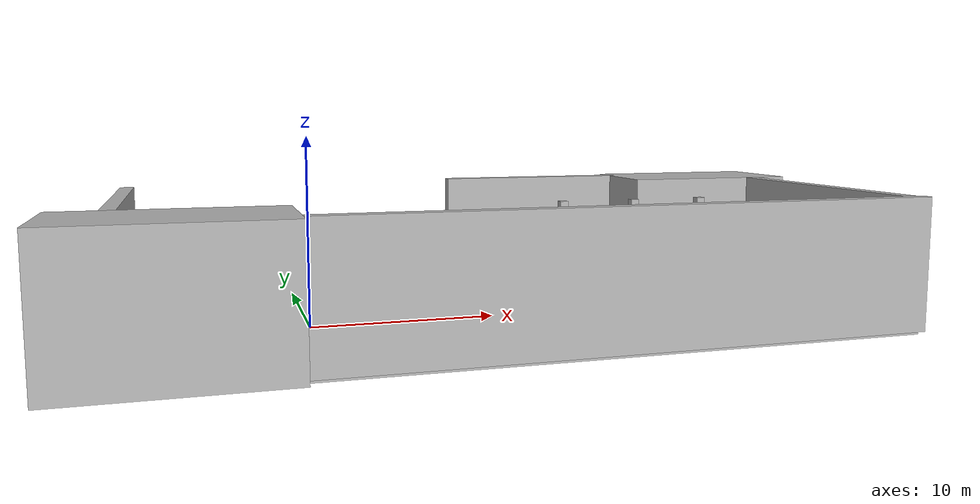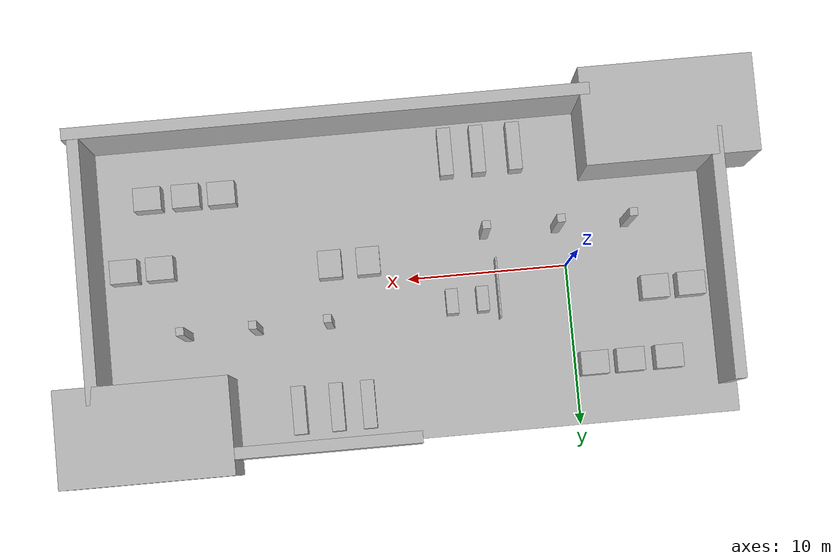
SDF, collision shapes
<?xml version='1.0'?>
<sdf version='1.6'>
  <model name='workcell'>
    <link name='link'>
      <pose frame=''>0 0 0 0 -0 0</pose>
      <self_collide>0</self_collide>
      <kinematic>0</kinematic>
      <gravity>1</gravity>
      <inertial>
        <mass>1</mass>
        <pose frame=''>0 0 0 0 -0 0</pose>
        <inertia>
          <ixx>1</ixx>
          <ixy>0</ixy>
          <ixz>0</ixz>
          <iyy>1</iyy>
          <iyz>0</iyz>
          <izz>1</izz>
        </inertia>
      </inertial>
      <visual name='visual'>
        <geometry>
          <mesh>
            <uri>model://ariac/meshes/mesh.dae</uri>
            <scale>1 1 1</scale>
          </mesh>
        </geometry>
        <pose frame=''>0 0 0 0 -0 0</pose>
        <cast_shadows>1</cast_shadows>
        <transparency>0</transparency>
        <material>
          <shader type='vertex'>
            <normal_map>__default__</normal_map>
          </shader>
        </material>
      </visual>
      <collision name='rack5'>
        <laser_retro>0</laser_retro>
        <max_contacts>10</max_contacts>
        <pose frame=''>2.66949 -7.6467 1.05 0 -0 0</pose>
        <geometry>
          <box>
            <size>0.84444 3.00 2.05</size>
          </box>
        </geometry>
        <surface>
          <friction>
            <ode>
              <mu>1</mu>
              <mu2>1</mu2>
              <fdir1>0 0 0</fdir1>
              <slip1>0</slip1>
              <slip2>0</slip2>
            </ode>
            <torsional>
              <coefficient>1</coefficient>
              <patch_radius>0</patch_radius>
              <surface_radius>0</surface_radius>
              <use_patch_radius>1</use_patch_radius>
              <ode>
                <slip>0</slip>
              </ode>
            </torsional>
          </friction>
          <bounce>
            <restitution_coefficient>0</restitution_coefficient>
            <threshold>1e+06</threshold>
          </bounce>
          <contact>
            <collide_without_contact>0</collide_without_contact>
            <collide_without_contact_bitmask>1</collide_without_contact_bitmask>
            <collide_bitmask>1</collide_bitmask>
            <ode>
              <soft_cfm>0</soft_cfm>
              <soft_erp>0.2</soft_erp>
              <kp>1e+13</kp>
              <kd>1</kd>
              <max_vel>0.01</max_vel>
              <min_depth>0</min_depth>
            </ode>
            <bullet>
              <split_impulse>1</split_impulse>
              <split_impulse_penetration_threshold>-0.01</split_impulse_penetration_threshold>
              <soft_cfm>0</soft_cfm>
              <soft_erp>0.2</soft_erp>
              <kp>1e+13</kp>
              <kd>1</kd>
            </bullet>
          </contact>
        </surface>
      </collision>
      <collision name='wall1'>
        <laser_retro>0</laser_retro>
        <max_contacts>10</max_contacts>
        <pose frame=''>14.1369 -10.0212 3.48855 0 -0 0</pose>
        <geometry>
          <box>
            <size>32.0768 0.72902 6.97771</size>
          </box>
        </geometry>
        <surface>
          <friction>
            <ode>
              <mu>1</mu>
              <mu2>1</mu2>
              <fdir1>0 0 0</fdir1>
              <slip1>0</slip1>
              <slip2>0</slip2>
            </ode>
            <torsional>
              <coefficient>1</coefficient>
              <patch_radius>0</patch_radius>
              <surface_radius>0</surface_radius>
              <use_patch_radius>1</use_patch_radius>
              <ode>
                <slip>0</slip>
              </ode>
            </torsional>
          </friction>
          <bounce>
            <restitution_coefficient>0</restitution_coefficient>
            <threshold>1e+06</threshold>
          </bounce>
          <contact>
            <collide_without_contact>0</collide_without_contact>
            <collide_without_contact_bitmask>1</collide_without_contact_bitmask>
            <collide_bitmask>1</collide_bitmask>
            <ode>
              <soft_cfm>0</soft_cfm>
              <soft_erp>0.2</soft_erp>
              <kp>1e+13</kp>
              <kd>1</kd>
              <max_vel>0.01</max_vel>
              <min_depth>0</min_depth>
            </ode>
            <bullet>
              <split_impulse>1</split_impulse>
              <split_impulse_penetration_threshold>-0.01</split_impulse_penetration_threshold>
              <soft_cfm>0</soft_cfm>
              <soft_erp>0.2</soft_erp>
              <kp>1e+13</kp>
              <kd>1</kd>
            </bullet>
          </contact>
        </surface>
      </collision>
      <collision name='floor'>
        <laser_retro>0</laser_retro>
        <max_contacts>10</max_contacts>
        <pose frame=''>10 0 -0.1 0 -0 0</pose>
        <geometry>
          <box>
            <size>40.1026 20.1026 0.2</size>
          </box>
        </geometry>
        <surface>
          <friction>
            <ode>
              <mu>1</mu>
              <mu2>1</mu2>
              <fdir1>0 0 0</fdir1>
              <slip1>0</slip1>
              <slip2>0</slip2>
            </ode>
            <torsional>
              <coefficient>1</coefficient>
              <patch_radius>0</patch_radius>
              <surface_radius>0</surface_radius>
              <use_patch_radius>1</use_patch_radius>
              <ode>
                <slip>0</slip>
              </ode>
            </torsional>
          </friction>
          <bounce>
            <restitution_coefficient>0</restitution_coefficient>
            <threshold>1e+06</threshold>
          </bounce>
          <contact>
            <collide_without_contact>0</collide_without_contact>
            <collide_without_contact_bitmask>1</collide_without_contact_bitmask>
            <collide_bitmask>1</collide_bitmask>
            <ode>
              <soft_cfm>0</soft_cfm>
              <soft_erp>0.2</soft_erp>
              <kp>1e+13</kp>
              <kd>1</kd>
              <max_vel>0</max_vel>
              <min_depth>0.001</min_depth>
            </ode>
            <bullet>
              <split_impulse>1</split_impulse>
              <split_impulse_penetration_threshold>-0.01</split_impulse_penetration_threshold>
              <soft_cfm>0</soft_cfm>
              <soft_erp>0.2</soft_erp>
              <kp>1e+13</kp>
              <kd>1</kd>
            </bullet>
          </contact>
        </surface>
      </collision>
      <collision name='wall2'>
        <laser_retro>0</laser_retro>
        <max_contacts>10</max_contacts>
        <pose frame=''>-6.58151 -8.324 3.48855 0 -0 0</pose>
        <geometry>
          <box>
            <size>10.5921 6.00198 6.97771</size>
          </box>
        </geometry>
        <surface>
          <friction>
            <ode>
              <mu>1</mu>
              <mu2>1</mu2>
              <fdir1>0 0 0</fdir1>
              <slip1>0</slip1>
              <slip2>0</slip2>
            </ode>
            <torsional>
              <coefficient>1</coefficient>
              <patch_radius>0</patch_radius>
              <surface_radius>0</surface_radius>
              <use_patch_radius>1</use_patch_radius>
              <ode>
                <slip>0</slip>
              </ode>
            </torsional>
          </friction>
          <bounce>
            <restitution_coefficient>0</restitution_coefficient>
            <threshold>1e+06</threshold>
          </bounce>
          <contact>
            <collide_without_contact>0</collide_without_contact>
            <collide_without_contact_bitmask>1</collide_without_contact_bitmask>
            <collide_bitmask>1</collide_bitmask>
            <ode>
              <soft_cfm>0</soft_cfm>
              <soft_erp>0.2</soft_erp>
              <kp>1e+13</kp>
              <kd>1</kd>
              <max_vel>0.01</max_vel>
              <min_depth>0</min_depth>
            </ode>
            <bullet>
              <split_impulse>1</split_impulse>
              <split_impulse_penetration_threshold>-0.01</split_impulse_penetration_threshold>
              <soft_cfm>0</soft_cfm>
              <soft_erp>0.2</soft_erp>
              <kp>1e+13</kp>
              <kd>1</kd>
            </bullet>
          </contact>
        </surface>
      </collision>
      <collision name='wall3'>
        <laser_retro>0</laser_retro>
        <max_contacts>10</max_contacts>
        <pose frame=''>-9.25721 0.6135 3.48855 0 -0 0</pose>
        <geometry>
          <box>
            <size>0.72902 15.2908 6.97771</size>
          </box>
        </geometry>
        <surface>
          <friction>
            <ode>
              <mu>1</mu>
              <mu2>1</mu2>
              <fdir1>0 0 0</fdir1>
              <slip1>0</slip1>
              <slip2>0</slip2>
            </ode>
            <torsional>
              <coefficient>1</coefficient>
              <patch_radius>0</patch_radius>
              <surface_radius>0</surface_radius>
              <use_patch_radius>1</use_patch_radius>
              <ode>
                <slip>0</slip>
              </ode>
            </torsional>
          </friction>
          <bounce>
            <restitution_coefficient>0</restitution_coefficient>
            <threshold>1e+06</threshold>
          </bounce>
          <contact>
            <collide_without_contact>0</collide_without_contact>
            <collide_without_contact_bitmask>1</collide_without_contact_bitmask>
            <collide_bitmask>1</collide_bitmask>
            <ode>
              <soft_cfm>0</soft_cfm>
              <soft_erp>0.2</soft_erp>
              <kp>1e+13</kp>
              <kd>1</kd>
              <max_vel>0.01</max_vel>
              <min_depth>0</min_depth>
            </ode>
            <bullet>
              <split_impulse>1</split_impulse>
              <split_impulse_penetration_threshold>-0.01</split_impulse_penetration_threshold>
              <soft_cfm>0</soft_cfm>
              <soft_erp>0.2</soft_erp>
              <kp>1e+13</kp>
              <kd>1</kd>
            </bullet>
          </contact>
        </surface>
      </collision>
      <collision name='wall5'>
        <laser_retro>0</laser_retro>
        <max_contacts>10</max_contacts>
        <pose frame=''>26.5815 8.324 3.48855 0 -0 0</pose>
        <geometry>
          <box>
            <size>10.5921 6.00198 6.97771</size>
          </box>
        </geometry>
        <surface>
          <friction>
            <ode>
              <mu>1</mu>
              <mu2>1</mu2>
              <fdir1>0 0 0</fdir1>
              <slip1>0</slip1>
              <slip2>0</slip2>
            </ode>
            <torsional>
              <coefficient>1</coefficient>
              <patch_radius>0</patch_radius>
              <surface_radius>0</surface_radius>
              <use_patch_radius>1</use_patch_radius>
              <ode>
                <slip>0</slip>
              </ode>
            </torsional>
          </friction>
          <bounce>
            <restitution_coefficient>0</restitution_coefficient>
            <threshold>1e+06</threshold>
          </bounce>
          <contact>
            <collide_without_contact>0</collide_without_contact>
            <collide_without_contact_bitmask>1</collide_without_contact_bitmask>
            <collide_bitmask>1</collide_bitmask>
            <ode>
              <soft_cfm>0</soft_cfm>
              <soft_erp>0.2</soft_erp>
              <kp>1e+13</kp>
              <kd>1</kd>
              <max_vel>0.01</max_vel>
              <min_depth>0</min_depth>
            </ode>
            <bullet>
              <split_impulse>1</split_impulse>
              <split_impulse_penetration_threshold>-0.01</split_impulse_penetration_threshold>
              <soft_cfm>0</soft_cfm>
              <soft_erp>0.2</soft_erp>
              <kp>1e+13</kp>
              <kd>1</kd>
            </bullet>
          </contact>
        </surface>
      </collision>
      <collision name='wall4'>
        <laser_retro>0</laser_retro>
        <max_contacts>10</max_contacts>
        <pose frame=''>16.0369 10.0212 3.48855 0 -0 0</pose>
        <geometry>
          <box>
            <size>12.0768 0.72902 6.97771</size>
          </box>
        </geometry>
        <surface>
          <friction>
            <ode>
              <mu>1</mu>
              <mu2>1</mu2>
              <fdir1>0 0 0</fdir1>
              <slip1>0</slip1>
              <slip2>0</slip2>
            </ode>
            <torsional>
              <coefficient>1</coefficient>
              <patch_radius>0</patch_radius>
              <surface_radius>0</surface_radius>
              <use_patch_radius>1</use_patch_radius>
              <ode>
                <slip>0</slip>
              </ode>
            </torsional>
          </friction>
          <bounce>
            <restitution_coefficient>0</restitution_coefficient>
            <threshold>1e+06</threshold>
          </bounce>
          <contact>
            <collide_without_contact>0</collide_without_contact>
            <collide_without_contact_bitmask>1</collide_without_contact_bitmask>
            <collide_bitmask>1</collide_bitmask>
            <ode>
              <soft_cfm>0</soft_cfm>
              <soft_erp>0.2</soft_erp>
              <kp>1e+13</kp>
              <kd>1</kd>
              <max_vel>0.01</max_vel>
              <min_depth>0</min_depth>
            </ode>
            <bullet>
              <split_impulse>1</split_impulse>
              <split_impulse_penetration_threshold>-0.01</split_impulse_penetration_threshold>
              <soft_cfm>0</soft_cfm>
              <soft_erp>0.2</soft_erp>
              <kp>1e+13</kp>
              <kd>1</kd>
            </bullet>
          </contact>
        </surface>
      </collision>
      <collision name='wall6'>
        <laser_retro>0</laser_retro>
        <max_contacts>10</max_contacts>
        <pose frame=''>29.5 -1.6135 3.48855 0 -0 0</pose>
        <geometry>
          <box>
            <size>0.72902 16.079 6.97771</size>
          </box>
        </geometry>
        <surface>
          <friction>
            <ode>
              <mu>1</mu>
              <mu2>1</mu2>
              <fdir1>0 0 0</fdir1>
              <slip1>0</slip1>
              <slip2>0</slip2>
            </ode>
            <torsional>
              <coefficient>1</coefficient>
              <patch_radius>0</patch_radius>
              <surface_radius>0</surface_radius>
              <use_patch_radius>1</use_patch_radius>
              <ode>
                <slip>0</slip>
              </ode>
            </torsional>
          </friction>
          <bounce>
            <restitution_coefficient>0</restitution_coefficient>
            <threshold>1e+06</threshold>
          </bounce>
          <contact>
            <collide_without_contact>0</collide_without_contact>
            <collide_without_contact_bitmask>1</collide_without_contact_bitmask>
            <collide_bitmask>1</collide_bitmask>
            <ode>
              <soft_cfm>0</soft_cfm>
              <soft_erp>0.2</soft_erp>
              <kp>1e+13</kp>
              <kd>1</kd>
              <max_vel>0.01</max_vel>
              <min_depth>0</min_depth>
            </ode>
            <bullet>
              <split_impulse>1</split_impulse>
              <split_impulse_penetration_threshold>-0.01</split_impulse_penetration_threshold>
              <soft_cfm>0</soft_cfm>
              <soft_erp>0.2</soft_erp>
              <kp>1e+13</kp>
              <kd>1</kd>
            </bullet>
          </contact>
        </surface>
      </collision>
      <collision name='rack1'>
        <laser_retro>0</laser_retro>
        <max_contacts>10</max_contacts>
        <pose frame=''>7.40056 1.7443 1.05 0 -0 0</pose>
        <geometry>
          <box>
            <size>0.74444 1.55808 2.05</size>
          </box>
        </geometry>
        <surface>
          <friction>
            <ode>
              <mu>1</mu>
              <mu2>1</mu2>
              <fdir1>0 0 0</fdir1>
              <slip1>0</slip1>
              <slip2>0</slip2>
            </ode>
            <torsional>
              <coefficient>1</coefficient>
              <patch_radius>0</patch_radius>
              <surface_radius>0</surface_radius>
              <use_patch_radius>1</use_patch_radius>
              <ode>
                <slip>0</slip>
              </ode>
            </torsional>
          </friction>
          <bounce>
            <restitution_coefficient>0</restitution_coefficient>
            <threshold>1e+06</threshold>
          </bounce>
          <contact>
            <collide_without_contact>0</collide_without_contact>
            <collide_without_contact_bitmask>1</collide_without_contact_bitmask>
            <collide_bitmask>1</collide_bitmask>
            <ode>
              <soft_cfm>0</soft_cfm>
              <soft_erp>0.2</soft_erp>
              <kp>1e+13</kp>
              <kd>1</kd>
              <max_vel>0.01</max_vel>
              <min_depth>0</min_depth>
            </ode>
            <bullet>
              <split_impulse>1</split_impulse>
              <split_impulse_penetration_threshold>-0.01</split_impulse_penetration_threshold>
              <soft_cfm>0</soft_cfm>
              <soft_erp>0.2</soft_erp>
              <kp>1e+13</kp>
              <kd>1</kd>
            </bullet>
          </contact>
        </surface>
      </collision>
      <collision name='rack2'>
        <laser_retro>0</laser_retro>
        <max_contacts>10</max_contacts>
        <pose frame=''>5.4795 1.7443 1.05 0 -0 0</pose>
        <geometry>
          <box>
            <size>0.74444 1.55581 2.05</size>
          </box>
        </geometry>
        <surface>
          <friction>
            <ode>
              <mu>1</mu>
              <mu2>1</mu2>
              <fdir1>0 0 0</fdir1>
              <slip1>0</slip1>
              <slip2>0</slip2>
            </ode>
            <torsional>
              <coefficient>1</coefficient>
              <patch_radius>0</patch_radius>
              <surface_radius>0</surface_radius>
              <use_patch_radius>1</use_patch_radius>
              <ode>
                <slip>0</slip>
              </ode>
            </torsional>
          </friction>
          <bounce>
            <restitution_coefficient>0</restitution_coefficient>
            <threshold>1e+06</threshold>
          </bounce>
          <contact>
            <collide_without_contact>0</collide_without_contact>
            <collide_without_contact_bitmask>1</collide_without_contact_bitmask>
            <collide_bitmask>1</collide_bitmask>
            <ode>
              <soft_cfm>0</soft_cfm>
              <soft_erp>0.2</soft_erp>
              <kp>1e+13</kp>
              <kd>1</kd>
              <max_vel>0.01</max_vel>
              <min_depth>0</min_depth>
            </ode>
            <bullet>
              <split_impulse>1</split_impulse>
              <split_impulse_penetration_threshold>-0.01</split_impulse_penetration_threshold>
              <soft_cfm>0</soft_cfm>
              <soft_erp>0.2</soft_erp>
              <kp>1e+13</kp>
              <kd>1</kd>
            </bullet>
          </contact>
        </surface>
      </collision>
      <collision name='rack3'>
        <laser_retro>0</laser_retro>
        <max_contacts>10</max_contacts>
        <pose frame=''>7.00142 -7.6467 1.05 0 -0 0</pose>
        <geometry>
          <box>
            <size>0.84444 3.00 2.05</size>
          </box>
        </geometry>
        <surface>
          <friction>
            <ode>
              <mu>1</mu>
              <mu2>1</mu2>
              <fdir1>0 0 0</fdir1>
              <slip1>0</slip1>
              <slip2>0</slip2>
            </ode>
            <torsional>
              <coefficient>1</coefficient>
              <patch_radius>0</patch_radius>
              <surface_radius>0</surface_radius>
              <use_patch_radius>1</use_patch_radius>
              <ode>
                <slip>0</slip>
              </ode>
            </torsional>
          </friction>
          <bounce>
            <restitution_coefficient>0</restitution_coefficient>
            <threshold>1e+06</threshold>
          </bounce>
          <contact>
            <collide_without_contact>0</collide_without_contact>
            <collide_without_contact_bitmask>1</collide_without_contact_bitmask>
            <collide_bitmask>1</collide_bitmask>
            <ode>
              <soft_cfm>0</soft_cfm>
              <soft_erp>0.2</soft_erp>
              <kp>1e+13</kp>
              <kd>1</kd>
              <max_vel>0.01</max_vel>
              <min_depth>0</min_depth>
            </ode>
            <bullet>
              <split_impulse>1</split_impulse>
              <split_impulse_penetration_threshold>-0.01</split_impulse_penetration_threshold>
              <soft_cfm>0</soft_cfm>
              <soft_erp>0.2</soft_erp>
              <kp>1e+13</kp>
              <kd>1</kd>
            </bullet>
          </contact>
        </surface>
      </collision>
      <collision name='rack4'>
        <laser_retro>0</laser_retro>
        <max_contacts>10</max_contacts>
        <pose frame=''>4.97338 -7.6467 1.05 0 -0 0</pose>
        <geometry>
          <box>
            <size>0.84444 3.00 2.05</size>
          </box>
        </geometry>
        <surface>
          <friction>
            <ode>
              <mu>1</mu>
              <mu2>1</mu2>
              <fdir1>0 0 0</fdir1>
              <slip1>0</slip1>
              <slip2>0</slip2>
            </ode>
            <torsional>
              <coefficient>1</coefficient>
              <patch_radius>0</patch_radius>
              <surface_radius>0</surface_radius>
              <use_patch_radius>1</use_patch_radius>
              <ode>
                <slip>0</slip>
              </ode>
            </torsional>
          </friction>
          <bounce>
            <restitution_coefficient>0</restitution_coefficient>
            <threshold>1e+06</threshold>
          </bounce>
          <contact>
            <collide_without_contact>0</collide_without_contact>
            <collide_without_contact_bitmask>1</collide_without_contact_bitmask>
            <collide_bitmask>1</collide_bitmask>
            <ode>
              <soft_cfm>0</soft_cfm>
              <soft_erp>0.2</soft_erp>
              <kp>1e+13</kp>
              <kd>1</kd>
              <max_vel>0.01</max_vel>
              <min_depth>0</min_depth>
            </ode>
            <bullet>
              <split_impulse>1</split_impulse>
              <split_impulse_penetration_threshold>-0.01</split_impulse_penetration_threshold>
              <soft_cfm>0</soft_cfm>
              <soft_erp>0.2</soft_erp>
              <kp>1e+13</kp>
              <kd>1</kd>
            </bullet>
          </contact>
        </surface>
      </collision>
      <collision name='large_pallet6'>
        <laser_retro>0</laser_retro>
        <max_contacts>10</max_contacts>
        <pose frame=''>23.4361 -6.32883 1.04257 0 -0 0</pose>
        <geometry>
          <box>
            <size>1.726 1.46349 2</size>
          </box>
        </geometry>
        <surface>
          <friction>
            <ode>
              <mu>1</mu>
              <mu2>1</mu2>
              <fdir1>0 0 0</fdir1>
              <slip1>0</slip1>
              <slip2>0</slip2>
            </ode>
            <torsional>
              <coefficient>1</coefficient>
              <patch_radius>0</patch_radius>
              <surface_radius>0</surface_radius>
              <use_patch_radius>1</use_patch_radius>
              <ode>
                <slip>0</slip>
              </ode>
            </torsional>
          </friction>
          <bounce>
            <restitution_coefficient>0</restitution_coefficient>
            <threshold>1e+06</threshold>
          </bounce>
          <contact>
            <collide_without_contact>0</collide_without_contact>
            <collide_without_contact_bitmask>1</collide_without_contact_bitmask>
            <collide_bitmask>1</collide_bitmask>
            <ode>
              <soft_cfm>0</soft_cfm>
              <soft_erp>0.2</soft_erp>
              <kp>1e+13</kp>
              <kd>1</kd>
              <max_vel>0.01</max_vel>
              <min_depth>0</min_depth>
            </ode>
            <bullet>
              <split_impulse>1</split_impulse>
              <split_impulse_penetration_threshold>-0.01</split_impulse_penetration_threshold>
              <soft_cfm>0</soft_cfm>
              <soft_erp>0.2</soft_erp>
              <kp>1e+13</kp>
              <kd>1</kd>
            </bullet>
          </contact>
        </surface>
      </collision>
      <collision name='rack6'>
        <laser_retro>0</laser_retro>
        <max_contacts>10</max_contacts>
        <pose frame=''>13.1292 7.6467 1.05 0 -0 0</pose>
        <geometry>
          <box>
            <size>0.84444 3.00 2.05</size>
          </box>
        </geometry>
        <surface>
          <friction>
            <ode>
              <mu>1</mu>
              <mu2>1</mu2>
              <fdir1>0 0 0</fdir1>
              <slip1>0</slip1>
              <slip2>0</slip2>
            </ode>
            <torsional>
              <coefficient>1</coefficient>
              <patch_radius>0</patch_radius>
              <surface_radius>0</surface_radius>
              <use_patch_radius>1</use_patch_radius>
              <ode>
                <slip>0</slip>
              </ode>
            </torsional>
          </friction>
          <bounce>
            <restitution_coefficient>0</restitution_coefficient>
            <threshold>1e+06</threshold>
          </bounce>
          <contact>
            <collide_without_contact>0</collide_without_contact>
            <collide_without_contact_bitmask>1</collide_without_contact_bitmask>
            <collide_bitmask>1</collide_bitmask>
            <ode>
              <soft_cfm>0</soft_cfm>
              <soft_erp>0.2</soft_erp>
              <kp>1e+13</kp>
              <kd>1</kd>
              <max_vel>0.01</max_vel>
              <min_depth>0</min_depth>
            </ode>
            <bullet>
              <split_impulse>1</split_impulse>
              <split_impulse_penetration_threshold>-0.01</split_impulse_penetration_threshold>
              <soft_cfm>0</soft_cfm>
              <soft_erp>0.2</soft_erp>
              <kp>1e+13</kp>
              <kd>1</kd>
            </bullet>
          </contact>
        </surface>
      </collision>
      <collision name='rack7'>
        <laser_retro>0</laser_retro>
        <max_contacts>10</max_contacts>
        <pose frame=''>15.1031 7.6467 1.05 0 -0 0</pose>
        <geometry>
          <box>
            <size>0.84444 3.00 2.05</size>
          </box>
        </geometry>
        <surface>
          <friction>
            <ode>
              <mu>1</mu>
              <mu2>1</mu2>
              <fdir1>0 0 0</fdir1>
              <slip1>0</slip1>
              <slip2>0</slip2>
            </ode>
            <torsional>
              <coefficient>1</coefficient>
              <patch_radius>0</patch_radius>
              <surface_radius>0</surface_radius>
              <use_patch_radius>1</use_patch_radius>
              <ode>
                <slip>0</slip>
              </ode>
            </torsional>
          </friction>
          <bounce>
            <restitution_coefficient>0</restitution_coefficient>
            <threshold>1e+06</threshold>
          </bounce>
          <contact>
            <collide_without_contact>0</collide_without_contact>
            <collide_without_contact_bitmask>1</collide_without_contact_bitmask>
            <collide_bitmask>1</collide_bitmask>
            <ode>
              <soft_cfm>0</soft_cfm>
              <soft_erp>0.2</soft_erp>
              <kp>1e+13</kp>
              <kd>1</kd>
              <max_vel>0.01</max_vel>
              <min_depth>0</min_depth>
            </ode>
            <bullet>
              <split_impulse>1</split_impulse>
              <split_impulse_penetration_threshold>-0.01</split_impulse_penetration_threshold>
              <soft_cfm>0</soft_cfm>
              <soft_erp>0.2</soft_erp>
              <kp>1e+13</kp>
              <kd>1</kd>
            </bullet>
          </contact>
        </surface>
      </collision>
      <collision name='rack8'>
        <laser_retro>0</laser_retro>
        <max_contacts>10</max_contacts>
        <pose frame=''>17.4611 7.6467 1.05 0 -0 0</pose>
        <geometry>
          <box>
            <size>0.84444 3.00 2.05</size>
          </box>
        </geometry>
        <surface>
          <friction>
            <ode>
              <mu>1</mu>
              <mu2>1</mu2>
              <fdir1>0 0 0</fdir1>
              <slip1>0</slip1>
              <slip2>0</slip2>
            </ode>
            <torsional>
              <coefficient>1</coefficient>
              <patch_radius>0</patch_radius>
              <surface_radius>0</surface_radius>
              <use_patch_radius>1</use_patch_radius>
              <ode>
                <slip>0</slip>
              </ode>
            </torsional>
          </friction>
          <bounce>
            <restitution_coefficient>0</restitution_coefficient>
            <threshold>1e+06</threshold>
          </bounce>
          <contact>
            <collide_without_contact>0</collide_without_contact>
            <collide_without_contact_bitmask>1</collide_without_contact_bitmask>
            <collide_bitmask>1</collide_bitmask>
            <ode>
              <soft_cfm>0</soft_cfm>
              <soft_erp>0.2</soft_erp>
              <kp>1e+13</kp>
              <kd>1</kd>
              <max_vel>0.01</max_vel>
              <min_depth>0</min_depth>
            </ode>
            <bullet>
              <split_impulse>1</split_impulse>
              <split_impulse_penetration_threshold>-0.01</split_impulse_penetration_threshold>
              <soft_cfm>0</soft_cfm>
              <soft_erp>0.2</soft_erp>
              <kp>1e+13</kp>
              <kd>1</kd>
            </bullet>
          </contact>
        </surface>
      </collision>
      <collision name='large_pallet1'>
        <laser_retro>0</laser_retro>
        <max_contacts>10</max_contacts>
        <pose frame=''>-3.33609 6.31883 1.04257 0 -0 0</pose>
        <geometry>
          <box>
            <size>1.726 1.46349 2</size>
          </box>
        </geometry>
        <surface>
          <friction>
            <ode>
              <mu>1</mu>
              <mu2>1</mu2>
              <fdir1>0 0 0</fdir1>
              <slip1>0</slip1>
              <slip2>0</slip2>
            </ode>
            <torsional>
              <coefficient>1</coefficient>
              <patch_radius>0</patch_radius>
              <surface_radius>0</surface_radius>
              <use_patch_radius>1</use_patch_radius>
              <ode>
                <slip>0</slip>
              </ode>
            </torsional>
          </friction>
          <bounce>
            <restitution_coefficient>0</restitution_coefficient>
            <threshold>1e+06</threshold>
          </bounce>
          <contact>
            <collide_without_contact>0</collide_without_contact>
            <collide_without_contact_bitmask>1</collide_without_contact_bitmask>
            <collide_bitmask>1</collide_bitmask>
            <ode>
              <soft_cfm>0</soft_cfm>
              <soft_erp>0.2</soft_erp>
              <kp>1e+13</kp>
              <kd>1</kd>
              <max_vel>0.01</max_vel>
              <min_depth>0</min_depth>
            </ode>
            <bullet>
              <split_impulse>1</split_impulse>
              <split_impulse_penetration_threshold>-0.01</split_impulse_penetration_threshold>
              <soft_cfm>0</soft_cfm>
              <soft_erp>0.2</soft_erp>
              <kp>1e+13</kp>
              <kd>1</kd>
            </bullet>
          </contact>
        </surface>
      </collision>
      <collision name='large_pallet2'>
        <laser_retro>0</laser_retro>
        <max_contacts>10</max_contacts>
        <pose frame=''>-5.74492 6.31883 1.04257 0 -0 0</pose>
        <geometry>
          <box>
            <size>1.726 1.46349 2</size>
          </box>
        </geometry>
        <surface>
          <friction>
            <ode>
              <mu>1</mu>
              <mu2>1</mu2>
              <fdir1>0 0 0</fdir1>
              <slip1>0</slip1>
              <slip2>0</slip2>
            </ode>
            <torsional>
              <coefficient>1</coefficient>
              <patch_radius>0</patch_radius>
              <surface_radius>0</surface_radius>
              <use_patch_radius>1</use_patch_radius>
              <ode>
                <slip>0</slip>
              </ode>
            </torsional>
          </friction>
          <bounce>
            <restitution_coefficient>0</restitution_coefficient>
            <threshold>1e+06</threshold>
          </bounce>
          <contact>
            <collide_without_contact>0</collide_without_contact>
            <collide_without_contact_bitmask>1</collide_without_contact_bitmask>
            <collide_bitmask>1</collide_bitmask>
            <ode>
              <soft_cfm>0</soft_cfm>
              <soft_erp>0.2</soft_erp>
              <kp>1e+13</kp>
              <kd>1</kd>
              <max_vel>0.01</max_vel>
              <min_depth>0</min_depth>
            </ode>
            <bullet>
              <split_impulse>1</split_impulse>
              <split_impulse_penetration_threshold>-0.01</split_impulse_penetration_threshold>
              <soft_cfm>0</soft_cfm>
              <soft_erp>0.2</soft_erp>
              <kp>1e+13</kp>
              <kd>1</kd>
            </bullet>
          </contact>
        </surface>
      </collision>
      <collision name='large_pallet3'>
        <laser_retro>0</laser_retro>
        <max_contacts>10</max_contacts>
        <pose frame=''>-7.55868 1.91644 1.04257 0 -0 0</pose>
        <geometry>
          <box>
            <size>1.726 1.46349 2</size>
          </box>
        </geometry>
        <surface>
          <friction>
            <ode>
              <mu>1</mu>
              <mu2>1</mu2>
              <fdir1>0 0 0</fdir1>
              <slip1>0</slip1>
              <slip2>0</slip2>
            </ode>
            <torsional>
              <coefficient>1</coefficient>
              <patch_radius>0</patch_radius>
              <surface_radius>0</surface_radius>
              <use_patch_radius>1</use_patch_radius>
              <ode>
                <slip>0</slip>
              </ode>
            </torsional>
          </friction>
          <bounce>
            <restitution_coefficient>0</restitution_coefficient>
            <threshold>1e+06</threshold>
          </bounce>
          <contact>
            <collide_without_contact>0</collide_without_contact>
            <collide_without_contact_bitmask>1</collide_without_contact_bitmask>
            <collide_bitmask>1</collide_bitmask>
            <ode>
              <soft_cfm>0</soft_cfm>
              <soft_erp>0.2</soft_erp>
              <kp>1e+13</kp>
              <kd>1</kd>
              <max_vel>0.01</max_vel>
              <min_depth>0</min_depth>
            </ode>
            <bullet>
              <split_impulse>1</split_impulse>
              <split_impulse_penetration_threshold>-0.01</split_impulse_penetration_threshold>
              <soft_cfm>0</soft_cfm>
              <soft_erp>0.2</soft_erp>
              <kp>1e+13</kp>
              <kd>1</kd>
            </bullet>
          </contact>
        </surface>
      </collision>
      <collision name='large_pallet5'>
        <laser_retro>0</laser_retro>
        <max_contacts>10</max_contacts>
        <pose frame=''>25.8449 -6.33883 1.04257 0 -0 0</pose>
        <geometry>
          <box>
            <size>1.726 1.46349 2</size>
          </box>
        </geometry>
        <surface>
          <friction>
            <ode>
              <mu>1</mu>
              <mu2>1</mu2>
              <fdir1>0 0 0</fdir1>
              <slip1>0</slip1>
              <slip2>0</slip2>
            </ode>
            <torsional>
              <coefficient>1</coefficient>
              <patch_radius>0</patch_radius>
              <surface_radius>0</surface_radius>
              <use_patch_radius>1</use_patch_radius>
              <ode>
                <slip>0</slip>
              </ode>
            </torsional>
          </friction>
          <bounce>
            <restitution_coefficient>0</restitution_coefficient>
            <threshold>1e+06</threshold>
          </bounce>
          <contact>
            <collide_without_contact>0</collide_without_contact>
            <collide_without_contact_bitmask>1</collide_without_contact_bitmask>
            <collide_bitmask>1</collide_bitmask>
            <ode>
              <soft_cfm>0</soft_cfm>
              <soft_erp>0.2</soft_erp>
              <kp>1e+13</kp>
              <kd>1</kd>
              <max_vel>0.01</max_vel>
              <min_depth>0</min_depth>
            </ode>
            <bullet>
              <split_impulse>1</split_impulse>
              <split_impulse_penetration_threshold>-0.01</split_impulse_penetration_threshold>
              <soft_cfm>0</soft_cfm>
              <soft_erp>0.2</soft_erp>
              <kp>1e+13</kp>
              <kd>1</kd>
            </bullet>
          </contact>
        </surface>
      </collision>
      <collision name='large_pallet4'>
        <laser_retro>0</laser_retro>
        <max_contacts>10</max_contacts>
        <pose frame=''>27.6587 -1.91644 1.04257 0 -0 0</pose>
        <geometry>
          <box>
            <size>1.726 1.46349 2</size>
          </box>
        </geometry>
        <surface>
          <friction>
            <ode>
              <mu>1</mu>
              <mu2>1</mu2>
              <fdir1>0 0 0</fdir1>
              <slip1>0</slip1>
              <slip2>0</slip2>
            </ode>
            <torsional>
              <coefficient>1</coefficient>
              <patch_radius>0</patch_radius>
              <surface_radius>0</surface_radius>
              <use_patch_radius>1</use_patch_radius>
              <ode>
                <slip>0</slip>
              </ode>
            </torsional>
          </friction>
          <bounce>
            <restitution_coefficient>0</restitution_coefficient>
            <threshold>1e+06</threshold>
          </bounce>
          <contact>
            <collide_without_contact>0</collide_without_contact>
            <collide_without_contact_bitmask>1</collide_without_contact_bitmask>
            <collide_bitmask>1</collide_bitmask>
            <ode>
              <soft_cfm>0</soft_cfm>
              <soft_erp>0.2</soft_erp>
              <kp>1e+13</kp>
              <kd>1</kd>
              <max_vel>0.01</max_vel>
              <min_depth>0</min_depth>
            </ode>
            <bullet>
              <split_impulse>1</split_impulse>
              <split_impulse_penetration_threshold>-0.01</split_impulse_penetration_threshold>
              <soft_cfm>0</soft_cfm>
              <soft_erp>0.2</soft_erp>
              <kp>1e+13</kp>
              <kd>1</kd>
            </bullet>
          </contact>
        </surface>
      </collision>
      <collision name='empty_pallet1'>
        <laser_retro>0</laser_retro>
        <max_contacts>10</max_contacts>
        <pose frame=''>-5.29667 1.91644 1 0 -0 0</pose>
        <geometry>
          <box>
            <size>1.726 1.46349 2</size>
          </box>
        </geometry>
        <surface>
          <friction>
            <ode>
              <mu>1</mu>
              <mu2>1</mu2>
              <fdir1>0 0 0</fdir1>
              <slip1>0</slip1>
              <slip2>0</slip2>
            </ode>
            <torsional>
              <coefficient>1</coefficient>
              <patch_radius>0</patch_radius>
              <surface_radius>0</surface_radius>
              <use_patch_radius>1</use_patch_radius>
              <ode>
                <slip>0</slip>
              </ode>
            </torsional>
          </friction>
          <bounce>
            <restitution_coefficient>0</restitution_coefficient>
            <threshold>1e+06</threshold>
          </bounce>
          <contact>
            <collide_without_contact>0</collide_without_contact>
            <collide_without_contact_bitmask>1</collide_without_contact_bitmask>
            <collide_bitmask>1</collide_bitmask>
            <ode>
              <soft_cfm>0</soft_cfm>
              <soft_erp>0.2</soft_erp>
              <kp>1e+13</kp>
              <kd>1</kd>
              <max_vel>0.01</max_vel>
              <min_depth>0</min_depth>
            </ode>
            <bullet>
              <split_impulse>1</split_impulse>
              <split_impulse_penetration_threshold>-0.01</split_impulse_penetration_threshold>
              <soft_cfm>0</soft_cfm>
              <soft_erp>0.2</soft_erp>
              <kp>1e+13</kp>
              <kd>1</kd>
            </bullet>
          </contact>
        </surface>
      </collision>
      <collision name='empty_pallet2'>
        <laser_retro>0</laser_retro>
        <max_contacts>10</max_contacts>
        <pose frame=''>25.3967 -1.92644 1 0 -0 0</pose>
        <geometry>
          <box>
            <size>1.726 1.46349 2</size>
          </box>
        </geometry>
        <surface>
          <friction>
            <ode>
              <mu>1</mu>
              <mu2>1</mu2>
              <fdir1>0 0 0</fdir1>
              <slip1>0</slip1>
              <slip2>0</slip2>
            </ode>
            <torsional>
              <coefficient>1</coefficient>
              <patch_radius>0</patch_radius>
              <surface_radius>0</surface_radius>
              <use_patch_radius>1</use_patch_radius>
              <ode>
                <slip>0</slip>
              </ode>
            </torsional>
          </friction>
          <bounce>
            <restitution_coefficient>0</restitution_coefficient>
            <threshold>1e+06</threshold>
          </bounce>
          <contact>
            <collide_without_contact>0</collide_without_contact>
            <collide_without_contact_bitmask>1</collide_without_contact_bitmask>
            <collide_bitmask>1</collide_bitmask>
            <ode>
              <soft_cfm>0</soft_cfm>
              <soft_erp>0.2</soft_erp>
              <kp>1e+13</kp>
              <kd>1</kd>
              <max_vel>0.01</max_vel>
              <min_depth>0</min_depth>
            </ode>
            <bullet>
              <split_impulse>1</split_impulse>
              <split_impulse_penetration_threshold>-0.01</split_impulse_penetration_threshold>
              <soft_cfm>0</soft_cfm>
              <soft_erp>0.2</soft_erp>
              <kp>1e+13</kp>
              <kd>1</kd>
            </bullet>
          </contact>
        </surface>
      </collision>
      <collision name='box_pallet2'>
        <laser_retro>0</laser_retro>
        <max_contacts>10</max_contacts>
        <pose frame=''>21.1981 -6.30883 1 0 -0 0</pose>
        <geometry>
          <box>
            <size>1.726 1.46349 2</size>
          </box>
        </geometry>
        <surface>
          <friction>
            <ode>
              <mu>1</mu>
              <mu2>1</mu2>
              <fdir1>0 0 0</fdir1>
              <slip1>0</slip1>
              <slip2>0</slip2>
            </ode>
            <torsional>
              <coefficient>1</coefficient>
              <patch_radius>0</patch_radius>
              <surface_radius>0</surface_radius>
              <use_patch_radius>1</use_patch_radius>
              <ode>
                <slip>0</slip>
              </ode>
            </torsional>
          </friction>
          <bounce>
            <restitution_coefficient>0</restitution_coefficient>
            <threshold>1e+06</threshold>
          </bounce>
          <contact>
            <collide_without_contact>0</collide_without_contact>
            <collide_without_contact_bitmask>1</collide_without_contact_bitmask>
            <collide_bitmask>1</collide_bitmask>
            <ode>
              <soft_cfm>0</soft_cfm>
              <soft_erp>0.2</soft_erp>
              <kp>1e+13</kp>
              <kd>1</kd>
              <max_vel>0.01</max_vel>
              <min_depth>0</min_depth>
            </ode>
            <bullet>
              <split_impulse>1</split_impulse>
              <split_impulse_penetration_threshold>-0.01</split_impulse_penetration_threshold>
              <soft_cfm>0</soft_cfm>
              <soft_erp>0.2</soft_erp>
              <kp>1e+13</kp>
              <kd>1</kd>
            </bullet>
          </contact>
        </surface>
      </collision>
      <collision name='box_pallet1'>
        <laser_retro>0</laser_retro>
        <max_contacts>10</max_contacts>
        <pose frame=''>-1.09806 6.31883 1 0 -0 0</pose>
        <geometry>
          <box>
            <size>1.726 1.46349 2</size>
          </box>
        </geometry>
        <surface>
          <friction>
            <ode>
              <mu>1</mu>
              <mu2>1</mu2>
              <fdir1>0 0 0</fdir1>
              <slip1>0</slip1>
              <slip2>0</slip2>
            </ode>
            <torsional>
              <coefficient>1</coefficient>
              <patch_radius>0</patch_radius>
              <surface_radius>0</surface_radius>
              <use_patch_radius>1</use_patch_radius>
              <ode>
                <slip>0</slip>
              </ode>
            </torsional>
          </friction>
          <bounce>
            <restitution_coefficient>0</restitution_coefficient>
            <threshold>1e+06</threshold>
          </bounce>
          <contact>
            <collide_without_contact>0</collide_without_contact>
            <collide_without_contact_bitmask>1</collide_without_contact_bitmask>
            <collide_bitmask>1</collide_bitmask>
            <ode>
              <soft_cfm>0</soft_cfm>
              <soft_erp>0.2</soft_erp>
              <kp>1e+13</kp>
              <kd>1</kd>
              <max_vel>0.01</max_vel>
              <min_depth>0</min_depth>
            </ode>
            <bullet>
              <split_impulse>1</split_impulse>
              <split_impulse_penetration_threshold>-0.01</split_impulse_penetration_threshold>
              <soft_cfm>0</soft_cfm>
              <soft_erp>0.2</soft_erp>
              <kp>1e+13</kp>
              <kd>1</kd>
            </bullet>
          </contact>
        </surface>
      </collision>
      <collision name='box_pallet3'>
        <laser_retro>0</laser_retro>
        <max_contacts>10</max_contacts>
        <pose frame=''>14.8081 -1.25883 1 0 -0 1.5708</pose>
        <geometry>
          <box>
            <size>1.726 1.46349 2</size>
          </box>
        </geometry>
        <surface>
          <friction>
            <ode>
              <mu>1</mu>
              <mu2>1</mu2>
              <fdir1>0 0 0</fdir1>
              <slip1>0</slip1>
              <slip2>0</slip2>
            </ode>
            <torsional>
              <coefficient>1</coefficient>
              <patch_radius>0</patch_radius>
              <surface_radius>0</surface_radius>
              <use_patch_radius>1</use_patch_radius>
              <ode>
                <slip>0</slip>
              </ode>
            </torsional>
          </friction>
          <bounce>
            <restitution_coefficient>0</restitution_coefficient>
            <threshold>1e+06</threshold>
          </bounce>
          <contact>
            <collide_without_contact>0</collide_without_contact>
            <collide_without_contact_bitmask>1</collide_without_contact_bitmask>
            <collide_bitmask>1</collide_bitmask>
            <ode>
              <soft_cfm>0</soft_cfm>
              <soft_erp>0.2</soft_erp>
              <kp>1e+13</kp>
              <kd>1</kd>
              <max_vel>0.01</max_vel>
              <min_depth>0</min_depth>
            </ode>
            <bullet>
              <split_impulse>1</split_impulse>
              <split_impulse_penetration_threshold>-0.01</split_impulse_penetration_threshold>
              <soft_cfm>0</soft_cfm>
              <soft_erp>0.2</soft_erp>
              <kp>1e+13</kp>
              <kd>1</kd>
            </bullet>
          </contact>
        </surface>
      </collision>
      <collision name='pole1'>
        <laser_retro>0</laser_retro>
        <max_contacts>10</max_contacts>
        <pose frame=''>5.02174 -2.39478 3.02208 0 -0 0</pose>
        <geometry>
          <box>
            <size>0.49161 0.49161 6.04415</size>
          </box>
        </geometry>
        <surface>
          <friction>
            <ode>
              <mu>1</mu>
              <mu2>1</mu2>
              <fdir1>0 0 0</fdir1>
              <slip1>0</slip1>
              <slip2>0</slip2>
            </ode>
            <torsional>
              <coefficient>1</coefficient>
              <patch_radius>0</patch_radius>
              <surface_radius>0</surface_radius>
              <use_patch_radius>1</use_patch_radius>
              <ode>
                <slip>0</slip>
              </ode>
            </torsional>
          </friction>
          <bounce>
            <restitution_coefficient>0</restitution_coefficient>
            <threshold>1e+06</threshold>
          </bounce>
          <contact>
            <collide_without_contact>0</collide_without_contact>
            <collide_without_contact_bitmask>1</collide_without_contact_bitmask>
            <collide_bitmask>1</collide_bitmask>
            <ode>
              <soft_cfm>0</soft_cfm>
              <soft_erp>0.2</soft_erp>
              <kp>1e+13</kp>
              <kd>1</kd>
              <max_vel>0.01</max_vel>
              <min_depth>0</min_depth>
            </ode>
            <bullet>
              <split_impulse>1</split_impulse>
              <split_impulse_penetration_threshold>-0.01</split_impulse_penetration_threshold>
              <soft_cfm>0</soft_cfm>
              <soft_erp>0.2</soft_erp>
              <kp>1e+13</kp>
              <kd>1</kd>
            </bullet>
          </contact>
        </surface>
      </collision>
      <collision name='box_pallet4'>
        <laser_retro>0</laser_retro>
        <max_contacts>10</max_contacts>
        <pose frame=''>12.4081 -1.25883 1 0 -0 1.5708</pose>
        <geometry>
          <box>
            <size>1.726 1.46349 2</size>
          </box>
        </geometry>
        <surface>
          <friction>
            <ode>
              <mu>1</mu>
              <mu2>1</mu2>
              <fdir1>0 0 0</fdir1>
              <slip1>0</slip1>
              <slip2>0</slip2>
            </ode>
            <torsional>
              <coefficient>1</coefficient>
              <patch_radius>0</patch_radius>
              <surface_radius>0</surface_radius>
              <use_patch_radius>1</use_patch_radius>
              <ode>
                <slip>0</slip>
              </ode>
            </torsional>
          </friction>
          <bounce>
            <restitution_coefficient>0</restitution_coefficient>
            <threshold>1e+06</threshold>
          </bounce>
          <contact>
            <collide_without_contact>0</collide_without_contact>
            <collide_without_contact_bitmask>1</collide_without_contact_bitmask>
            <collide_bitmask>1</collide_bitmask>
            <ode>
              <soft_cfm>0</soft_cfm>
              <soft_erp>0.2</soft_erp>
              <kp>1e+13</kp>
              <kd>1</kd>
              <max_vel>0.01</max_vel>
              <min_depth>0</min_depth>
            </ode>
            <bullet>
              <split_impulse>1</split_impulse>
              <split_impulse_penetration_threshold>-0.01</split_impulse_penetration_threshold>
              <soft_cfm>0</soft_cfm>
              <soft_erp>0.2</soft_erp>
              <kp>1e+13</kp>
              <kd>1</kd>
            </bullet>
          </contact>
        </surface>
      </collision>
      <collision name='pole2'>
        <laser_retro>0</laser_retro>
        <max_contacts>10</max_contacts>
        <pose frame=''>0.47071 -2.39478 3.02208 0 -0 0</pose>
        <geometry>
          <box>
            <size>0.49161 0.49161 6.04415</size>
          </box>
        </geometry>
        <surface>
          <friction>
            <ode>
              <mu>1</mu>
              <mu2>1</mu2>
              <fdir1>0 0 0</fdir1>
              <slip1>0</slip1>
              <slip2>0</slip2>
            </ode>
            <torsional>
              <coefficient>1</coefficient>
              <patch_radius>0</patch_radius>
              <surface_radius>0</surface_radius>
              <use_patch_radius>1</use_patch_radius>
              <ode>
                <slip>0</slip>
              </ode>
            </torsional>
          </friction>
          <bounce>
            <restitution_coefficient>0</restitution_coefficient>
            <threshold>1e+06</threshold>
          </bounce>
          <contact>
            <collide_without_contact>0</collide_without_contact>
            <collide_without_contact_bitmask>1</collide_without_contact_bitmask>
            <collide_bitmask>1</collide_bitmask>
            <ode>
              <soft_cfm>0</soft_cfm>
              <soft_erp>0.2</soft_erp>
              <kp>1e+13</kp>
              <kd>1</kd>
              <max_vel>0.01</max_vel>
              <min_depth>0</min_depth>
            </ode>
            <bullet>
              <split_impulse>1</split_impulse>
              <split_impulse_penetration_threshold>-0.01</split_impulse_penetration_threshold>
              <soft_cfm>0</soft_cfm>
              <soft_erp>0.2</soft_erp>
              <kp>1e+13</kp>
              <kd>1</kd>
            </bullet>
          </contact>
        </surface>
      </collision>
      <collision name='pole3'>
        <laser_retro>0</laser_retro>
        <max_contacts>10</max_contacts>
        <pose frame=''>-3.93786 -2.39478 3.02208 0 -0 0</pose>
        <geometry>
          <box>
            <size>0.49161 0.49161 6.04415</size>
          </box>
        </geometry>
        <surface>
          <friction>
            <ode>
              <mu>1</mu>
              <mu2>1</mu2>
              <fdir1>0 0 0</fdir1>
              <slip1>0</slip1>
              <slip2>0</slip2>
            </ode>
            <torsional>
              <coefficient>1</coefficient>
              <patch_radius>0</patch_radius>
              <surface_radius>0</surface_radius>
              <use_patch_radius>1</use_patch_radius>
              <ode>
                <slip>0</slip>
              </ode>
            </torsional>
          </friction>
          <bounce>
            <restitution_coefficient>0</restitution_coefficient>
            <threshold>1e+06</threshold>
          </bounce>
          <contact>
            <collide_without_contact>0</collide_without_contact>
            <collide_without_contact_bitmask>1</collide_without_contact_bitmask>
            <collide_bitmask>1</collide_bitmask>
            <ode>
              <soft_cfm>0</soft_cfm>
              <soft_erp>0.2</soft_erp>
              <kp>1e+13</kp>
              <kd>1</kd>
              <max_vel>0.01</max_vel>
              <min_depth>0</min_depth>
            </ode>
            <bullet>
              <split_impulse>1</split_impulse>
              <split_impulse_penetration_threshold>-0.01</split_impulse_penetration_threshold>
              <soft_cfm>0</soft_cfm>
              <soft_erp>0.2</soft_erp>
              <kp>1e+13</kp>
              <kd>1</kd>
            </bullet>
          </contact>
        </surface>
      </collision>
      <collision name='pole4'>
        <laser_retro>0</laser_retro>
        <max_contacts>10</max_contacts>
        <pose frame=''>15.1068 2.41547 3.02208 0 -0 0</pose>
        <geometry>
          <box>
            <size>0.49161 0.49161 6.04415</size>
          </box>
        </geometry>
        <surface>
          <friction>
            <ode>
              <mu>1</mu>
              <mu2>1</mu2>
              <fdir1>0 0 0</fdir1>
              <slip1>0</slip1>
              <slip2>0</slip2>
            </ode>
            <torsional>
              <coefficient>1</coefficient>
              <patch_radius>0</patch_radius>
              <surface_radius>0</surface_radius>
              <use_patch_radius>1</use_patch_radius>
              <ode>
                <slip>0</slip>
              </ode>
            </torsional>
          </friction>
          <bounce>
            <restitution_coefficient>0</restitution_coefficient>
            <threshold>1e+06</threshold>
          </bounce>
          <contact>
            <collide_without_contact>0</collide_without_contact>
            <collide_without_contact_bitmask>1</collide_without_contact_bitmask>
            <collide_bitmask>1</collide_bitmask>
            <ode>
              <soft_cfm>0</soft_cfm>
              <soft_erp>0.2</soft_erp>
              <kp>1e+13</kp>
              <kd>1</kd>
              <max_vel>0.01</max_vel>
              <min_depth>0</min_depth>
            </ode>
            <bullet>
              <split_impulse>1</split_impulse>
              <split_impulse_penetration_threshold>-0.01</split_impulse_penetration_threshold>
              <soft_cfm>0</soft_cfm>
              <soft_erp>0.2</soft_erp>
              <kp>1e+13</kp>
              <kd>1</kd>
            </bullet>
          </contact>
        </surface>
      </collision>
      <collision name='pole5'>
        <laser_retro>0</laser_retro>
        <max_contacts>10</max_contacts>
        <pose frame=''>19.6378 2.41547 3.02208 0 -0 0</pose>
        <geometry>
          <box>
            <size>0.49161 0.49161 6.04415</size>
          </box>
        </geometry>
        <surface>
          <friction>
            <ode>
              <mu>1</mu>
              <mu2>1</mu2>
              <fdir1>0 0 0</fdir1>
              <slip1>0</slip1>
              <slip2>0</slip2>
            </ode>
            <torsional>
              <coefficient>1</coefficient>
              <patch_radius>0</patch_radius>
              <surface_radius>0</surface_radius>
              <use_patch_radius>1</use_patch_radius>
              <ode>
                <slip>0</slip>
              </ode>
            </torsional>
          </friction>
          <bounce>
            <restitution_coefficient>0</restitution_coefficient>
            <threshold>1e+06</threshold>
          </bounce>
          <contact>
            <collide_without_contact>0</collide_without_contact>
            <collide_without_contact_bitmask>1</collide_without_contact_bitmask>
            <collide_bitmask>1</collide_bitmask>
            <ode>
              <soft_cfm>0</soft_cfm>
              <soft_erp>0.2</soft_erp>
              <kp>1e+13</kp>
              <kd>1</kd>
              <max_vel>0.01</max_vel>
              <min_depth>0</min_depth>
            </ode>
            <bullet>
              <split_impulse>1</split_impulse>
              <split_impulse_penetration_threshold>-0.01</split_impulse_penetration_threshold>
              <soft_cfm>0</soft_cfm>
              <soft_erp>0.2</soft_erp>
              <kp>1e+13</kp>
              <kd>1</kd>
            </bullet>
          </contact>
        </surface>
      </collision>
      <collision name='pole6'>
        <laser_retro>0</laser_retro>
        <max_contacts>10</max_contacts>
        <pose frame=''>24.0496 2.41547 3.02208 0 -0 0</pose>
        <geometry>
          <box>
            <size>0.49161 0.49161 6.04415</size>
          </box>
        </geometry>
        <surface>
          <friction>
            <ode>
              <mu>1</mu>
              <mu2>1</mu2>
              <fdir1>0 0 0</fdir1>
              <slip1>0</slip1>
              <slip2>0</slip2>
            </ode>
            <torsional>
              <coefficient>1</coefficient>
              <patch_radius>0</patch_radius>
              <surface_radius>0</surface_radius>
              <use_patch_radius>1</use_patch_radius>
              <ode>
                <slip>0</slip>
              </ode>
            </torsional>
          </friction>
          <bounce>
            <restitution_coefficient>0</restitution_coefficient>
            <threshold>1e+06</threshold>
          </bounce>
          <contact>
            <collide_without_contact>0</collide_without_contact>
            <collide_without_contact_bitmask>1</collide_without_contact_bitmask>
            <collide_bitmask>1</collide_bitmask>
            <ode>
              <soft_cfm>0</soft_cfm>
              <soft_erp>0.2</soft_erp>
              <kp>1e+13</kp>
              <kd>1</kd>
              <max_vel>0.01</max_vel>
              <min_depth>0</min_depth>
            </ode>
            <bullet>
              <split_impulse>1</split_impulse>
              <split_impulse_penetration_threshold>-0.01</split_impulse_penetration_threshold>
              <soft_cfm>0</soft_cfm>
              <soft_erp>0.2</soft_erp>
              <kp>1e+13</kp>
              <kd>1</kd>
            </bullet>
          </contact>
        </surface>
      </collision>
      <collision name="protective_mesh">
        <laser_retro>0</laser_retro>
        <max_contacts>10</max_contacts>
        <pose frame=''>4.45 1.125 1 0 -0 0</pose>
        <geometry>
          <box>
            <size>0.1 3.75 2</size>
          </box>
        </geometry>
        <surface>
          <friction>
            <ode>
              <mu>1</mu>
              <mu2>1</mu2>
              <fdir1>0 0 0</fdir1>
              <slip1>0</slip1>
              <slip2>0</slip2>
            </ode>
          </friction>
        </surface>
      </collision>
    </link>
    <static>1</static>
    <allow_auto_disable>1</allow_auto_disable>
  </model>
</sdf>
